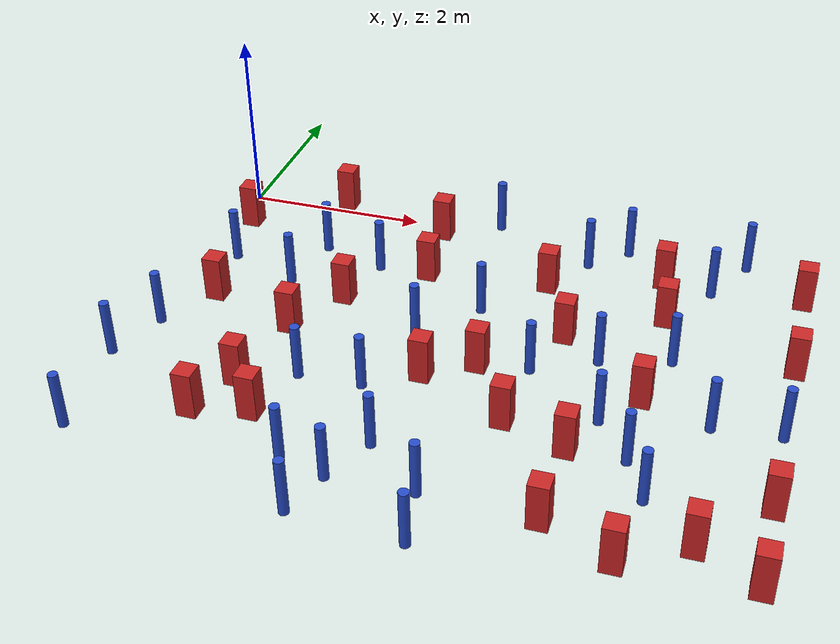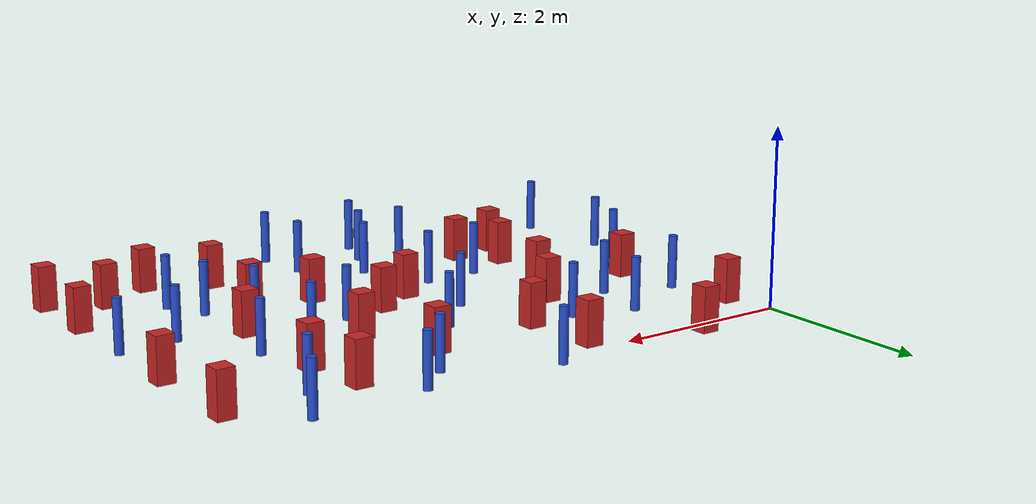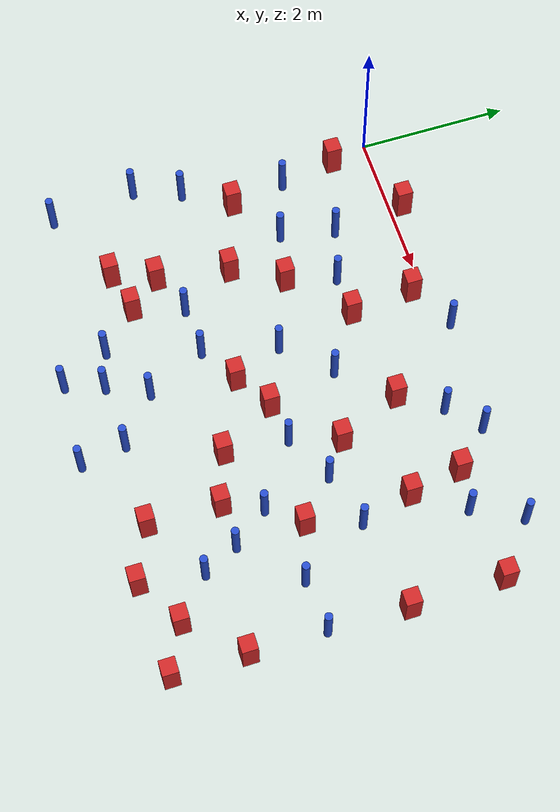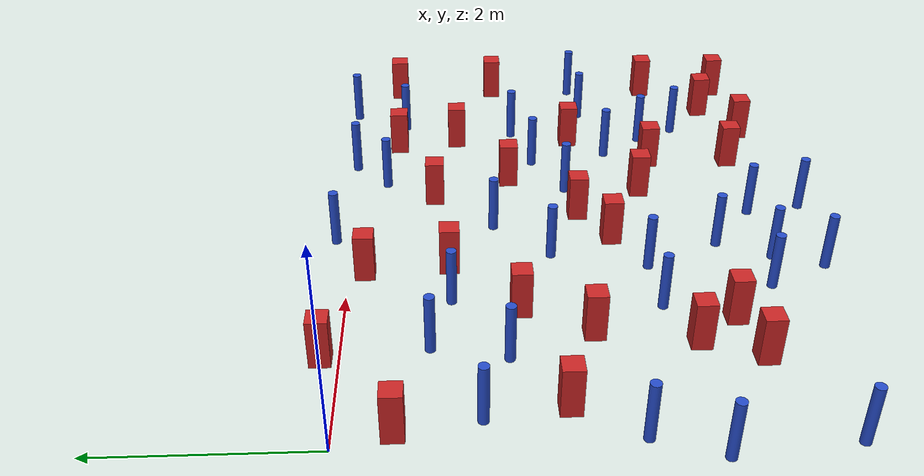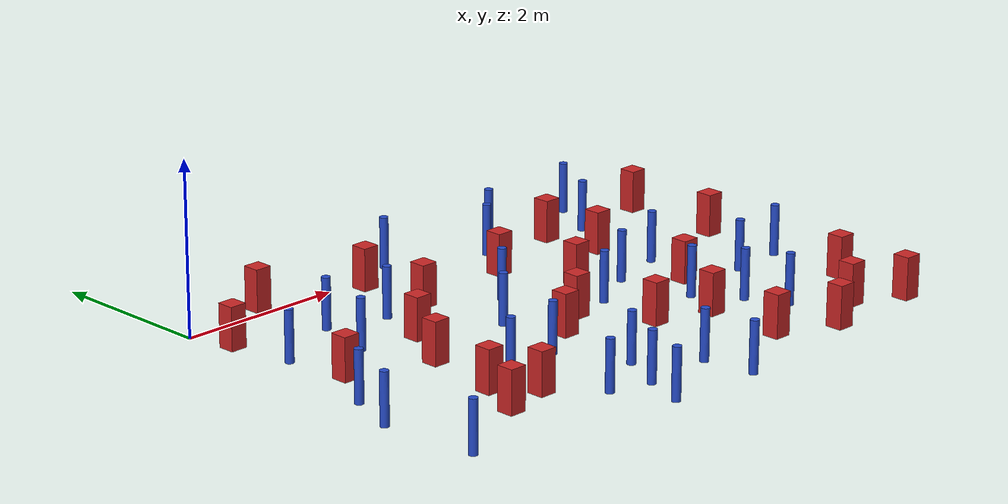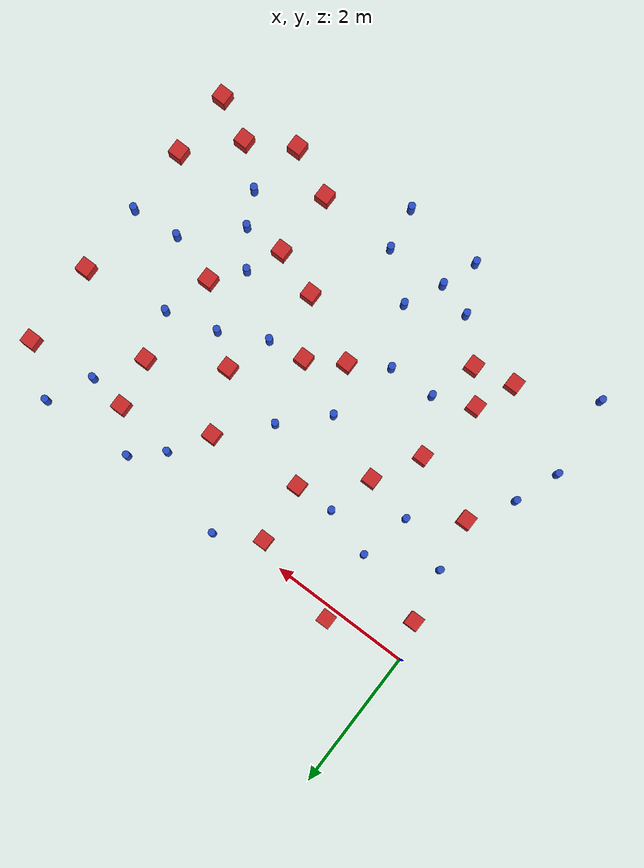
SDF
<sdf version="1.6">
 <model name="dense_32">
  <model name="pole_obstacle12">
   <static>true</static>
   <pose>2.97804801223 0.164714240803 2.88873142074e-08 -9.90536689314e-09 4.60219949002e-07 -1.20965994953e-07</pose>
   <link name="link">
    <pose>0 0 0.3 0 -0 0</pose>
    <inertial>
     <mass>1</mass>
     <inertia><ixx>0.145833</ixx><ixy>0</ixy><ixz>0</ixz><iyy>0.145833</iyy><iyz>0</iyz><izz>0.125</izz></inertia>
    </inertial>
    <collision name="collision">
     <geometry><cylinder><radius>0.05</radius><length>.6</length></cylinder></geometry>
    </collision>
    <visual name="visual">
     <geometry><cylinder><radius>0.05</radius><length>.6</length></cylinder></geometry>
     <material>
      <script><name>Gazebo/Blue</name><uri>file://media/materials/scripts/gazebo.material</uri></script>
     </material>
    </visual>
   </link>
  </model>
  <model name="pole_obstacle16">
   <static>true</static>
   <pose>4.10393876735 -0.329731906449 2.88873142074e-08 -9.90536689981e-09 4.60219948986e-07 -1.20965994962e-07</pose>
   <link name="link">
    <pose>0 0 0.3 0 -0 0</pose>
    <inertial>
     <mass>1</mass>
     <inertia><ixx>0.145833</ixx><ixy>0</ixy><ixz>0</ixz><iyy>0.145833</iyy><iyz>0</iyz><izz>0.125</izz></inertia>
    </inertial>
    <collision name="collision">
     <geometry><cylinder><radius>0.05</radius><length>.6</length></cylinder></geometry>
    </collision>
    <visual name="visual">
     <geometry><cylinder><radius>0.05</radius><length>.6</length></cylinder></geometry>
     <material>
      <script><name>Gazebo/Blue</name><uri>file://media/materials/scripts/gazebo.material</uri></script>
     </material>
    </visual>
   </link>
  </model>
  <model name="square_post_obstacle24">
   <static>true</static>
   <pose>0.161639222224 -0.51346482138 8.22691968438e-08 7.2212513382e-06 -7.54495500217e-07 2.29674213826e-05</pose>
   <link name="link">
    <pose>0 0 0.25 0 -0 0</pose>
    <inertial>
     <mass>100</mass>
     <inertia>
      <ixx>0.166667</ixx>
      <ixy>0</ixy>
      <ixz>0</ixz>
      <iyy>0.166667</iyy>
      <iyz>0</iyz>
      <izz>0.166667</izz>
     </inertia>
    </inertial>
    <collision name="collision"><geometry><box><size>.2 .2 .5</size></box></geometry></collision>
    <visual name="visual">
     <geometry><box><size>.2 .2 .5</size></box></geometry>
     <material>
      <script><name>Gazebo/Red</name><uri>file://media/materials/scripts/gazebo.material</uri></script>
     </material>
    </visual>
   </link>
  </model>
  <model name="pole_obstacle36">
   <static>true</static>
   <pose>3.38603469121 -4.26538103777 2.88873142074e-08 -9.90536689859e-09 4.60219948989e-07 -1.20965994961e-07</pose>
   <link name="link">
    <pose>0 0 0.3 0 -0 0</pose>
    <inertial>
     <mass>1</mass>
     <inertia><ixx>0.145833</ixx><ixy>0</ixy><ixz>0</ixz><iyy>0.145833</iyy><iyz>0</iyz><izz>0.125</izz></inertia>
    </inertial>
    <collision name="collision">
     <geometry><cylinder><radius>0.05</radius><length>.6</length></cylinder></geometry>
    </collision>
    <visual name="visual">
     <geometry><cylinder><radius>0.05</radius><length>.6</length></cylinder></geometry>
     <material>
      <script><name>Gazebo/Blue</name><uri>file://media/materials/scripts/gazebo.material</uri></script>
     </material>
    </visual>
   </link>
  </model>
  <model name="pole_obstacle39">
   <static>true</static>
   <pose>4.72475378605 -2.88024928245 2.88873142074e-08 -9.90536690245e-09 4.6021994898e-07 -1.20965994966e-07</pose>
   <link name="link">
    <pose>0 0 0.3 0 -0 0</pose>
    <inertial>
     <mass>1</mass>
     <inertia><ixx>0.145833</ixx><ixy>0</ixy><ixz>0</ixz><iyy>0.145833</iyy><iyz>0</iyz><izz>0.125</izz></inertia>
    </inertial>
    <collision name="collision">
     <geometry><cylinder><radius>0.05</radius><length>.6</length></cylinder></geometry>
    </collision>
    <visual name="visual">
     <geometry><cylinder><radius>0.05</radius><length>.6</length></cylinder></geometry>
     <material>
      <script><name>Gazebo/Blue</name><uri>file://media/materials/scripts/gazebo.material</uri></script>
     </material>
    </visual>
   </link>
  </model>
  <model name="square_post_obstacle40">
   <static>true</static>
   <pose>5.0779610593 -1.13117154271 8.22691968438e-08 7.2212513382e-06 -7.54495500217e-07 2.29674213826e-05</pose>
   <link name="link">
    <pose>0 0 0.25 0 -0 0</pose>
    <inertial>
     <mass>100</mass>
     <inertia>
      <ixx>0.166667</ixx>
      <ixy>0</ixy>
      <ixz>0</ixz>
      <iyy>0.166667</iyy>
      <iyz>0</iyz>
      <izz>0.166667</izz>
     </inertia>
    </inertial>
    <collision name="collision"><geometry><box><size>.2 .2 .5</size></box></geometry></collision>
    <visual name="visual">
     <geometry><box><size>.2 .2 .5</size></box></geometry>
     <material>
      <script><name>Gazebo/Red</name><uri>file://media/materials/scripts/gazebo.material</uri></script>
     </material>
    </visual>
   </link>
  </model>
  <model name="square_post_obstacle46">
   <static>true</static>
   <pose>1.10136585486 0.15937719004 8.22691968438e-08 7.2212513382e-06 -7.54495500217e-07 2.29674213826e-05</pose>
   <link name="link">
    <pose>0 0 0.25 0 -0 0</pose>
    <inertial>
     <mass>100</mass>
     <inertia>
      <ixx>0.166667</ixx>
      <ixy>0</ixy>
      <ixz>0</ixz>
      <iyy>0.166667</iyy>
      <iyz>0</iyz>
      <izz>0.166667</izz>
     </inertia>
    </inertial>
    <collision name="collision"><geometry><box><size>.2 .2 .5</size></box></geometry></collision>
    <visual name="visual">
     <geometry><box><size>.2 .2 .5</size></box></geometry>
     <material>
      <script><name>Gazebo/Red</name><uri>file://media/materials/scripts/gazebo.material</uri></script>
     </material>
    </visual>
   </link>
  </model>
  <model name="pole_obstacle46">
   <static>true</static>
   <pose>5.74136471731 -2.68708174946 2.88873142074e-08 -9.90536690245e-09 4.6021994898e-07 -1.20965994966e-07</pose>
   <link name="link">
    <pose>0 0 0.3 0 -0 0</pose>
    <inertial>
     <mass>1</mass>
     <inertia><ixx>0.145833</ixx><ixy>0</ixy><ixz>0</ixz><iyy>0.145833</iyy><iyz>0</iyz><izz>0.125</izz></inertia>
    </inertial>
    <collision name="collision">
     <geometry><cylinder><radius>0.05</radius><length>.6</length></cylinder></geometry>
    </collision>
    <visual name="visual">
     <geometry><cylinder><radius>0.05</radius><length>.6</length></cylinder></geometry>
     <material>
      <script><name>Gazebo/Blue</name><uri>file://media/materials/scripts/gazebo.material</uri></script>
     </material>
    </visual>
   </link>
  </model>
  <model name="square_post_obstacle53">
   <static>true</static>
   <pose>5.05509290788 -2.47497143561 8.22691968438e-08 7.2212513382e-06 -7.54495500217e-07 2.29674213826e-05</pose>
   <link name="link">
    <pose>0 0 0.25 0 -0 0</pose>
    <inertial>
     <mass>100</mass>
     <inertia>
      <ixx>0.166667</ixx>
      <ixy>0</ixy>
      <ixz>0</ixz>
      <iyy>0.166667</iyy>
      <iyz>0</iyz>
      <izz>0.166667</izz>
     </inertia>
    </inertial>
    <collision name="collision"><geometry><box><size>.2 .2 .5</size></box></geometry></collision>
    <visual name="visual">
     <geometry><box><size>.2 .2 .5</size></box></geometry>
     <material>
      <script><name>Gazebo/Red</name><uri>file://media/materials/scripts/gazebo.material</uri></script>
     </material>
    </visual>
   </link>
  </model>
  <model name="square_post_obstacle55">
   <static>true</static>
   <pose>1.22004076152 -3.26660531634 8.22691968438e-08 7.2212513382e-06 -7.54495500217e-07 2.29674213826e-05</pose>
   <link name="link">
    <pose>0 0 0.25 0 -0 0</pose>
    <inertial>
     <mass>100</mass>
     <inertia>
      <ixx>0.166667</ixx>
      <ixy>0</ixy>
      <ixz>0</ixz>
      <iyy>0.166667</iyy>
      <iyz>0</iyz>
      <izz>0.166667</izz>
     </inertia>
    </inertial>
    <collision name="collision"><geometry><box><size>.2 .2 .5</size></box></geometry></collision>
    <visual name="visual">
     <geometry><box><size>.2 .2 .5</size></box></geometry>
     <material>
      <script><name>Gazebo/Red</name><uri>file://media/materials/scripts/gazebo.material</uri></script>
     </material>
    </visual>
   </link>
  </model>
  <model name="pole_obstacle57">
   <static>true</static>
   <pose>3.19239928107 -1.48309557375 2.88873142074e-08 -9.90536689395e-09 4.60219949e-07 -1.20965994953e-07</pose>
   <link name="link">
    <pose>0 0 0.3 0 -0 0</pose>
    <inertial>
     <mass>1</mass>
     <inertia><ixx>0.145833</ixx><ixy>0</ixy><ixz>0</ixz><iyy>0.145833</iyy><iyz>0</iyz><izz>0.125</izz></inertia>
    </inertial>
    <collision name="collision">
     <geometry><cylinder><radius>0.05</radius><length>.6</length></cylinder></geometry>
    </collision>
    <visual name="visual">
     <geometry><cylinder><radius>0.05</radius><length>.6</length></cylinder></geometry>
     <material>
      <script><name>Gazebo/Blue</name><uri>file://media/materials/scripts/gazebo.material</uri></script>
     </material>
    </visual>
   </link>
  </model>
  <model name="square_post_obstacle64">
   <static>true</static>
   <pose>4.49527817915 -4.29552521567 8.22691968438e-08 7.22125133819e-06 -7.54495500217e-07 2.29674213826e-05</pose>
   <link name="link">
    <pose>0 0 0.25 0 -0 0</pose>
    <inertial>
     <mass>100</mass>
     <inertia>
      <ixx>0.166667</ixx>
      <ixy>0</ixy>
      <ixz>0</ixz>
      <iyy>0.166667</iyy>
      <iyz>0</iyz>
      <izz>0.166667</izz>
     </inertia>
    </inertial>
    <collision name="collision"><geometry><box><size>.2 .2 .5</size></box></geometry></collision>
    <visual name="visual">
     <geometry><box><size>.2 .2 .5</size></box></geometry>
     <material>
      <script><name>Gazebo/Red</name><uri>file://media/materials/scripts/gazebo.material</uri></script>
     </material>
    </visual>
   </link>
  </model>
  <model name="square_post_obstacle71">
   <static>true</static>
   <pose>2.92680643446 -2.6990966376 8.22691968438e-08 7.2212513382e-06 -7.54495500217e-07 2.29674213826e-05</pose>
   <link name="link">
    <pose>0 0 0.25 0 -0 0</pose>
    <inertial>
     <mass>100</mass>
     <inertia>
      <ixx>0.166667</ixx>
      <ixy>0</ixy>
      <ixz>0</ixz>
      <iyy>0.166667</iyy>
      <iyz>0</iyz>
      <izz>0.166667</izz>
     </inertia>
    </inertial>
    <collision name="collision"><geometry><box><size>.2 .2 .5</size></box></geometry></collision>
    <visual name="visual">
     <geometry><box><size>.2 .2 .5</size></box></geometry>
     <material>
      <script><name>Gazebo/Red</name><uri>file://media/materials/scripts/gazebo.material</uri></script>
     </material>
    </visual>
   </link>
  </model>
  <model name="pole_obstacle69">
   <static>true</static>
   <pose>2.79278912963 -3.78151208658 2.88873142074e-08 -9.90536690232e-09 4.6021994898e-07 -1.20965994968e-07</pose>
   <link name="link">
    <pose>0 0 0.3 0 -0 0</pose>
    <inertial>
     <mass>1</mass>
     <inertia><ixx>0.145833</ixx><ixy>0</ixy><ixz>0</ixz><iyy>0.145833</iyy><iyz>0</iyz><izz>0.125</izz></inertia>
    </inertial>
    <collision name="collision">
     <geometry><cylinder><radius>0.05</radius><length>.6</length></cylinder></geometry>
    </collision>
    <visual name="visual">
     <geometry><cylinder><radius>0.05</radius><length>.6</length></cylinder></geometry>
     <material>
      <script><name>Gazebo/Blue</name><uri>file://media/materials/scripts/gazebo.material</uri></script>
     </material>
    </visual>
   </link>
  </model>
  <model name="pole_obstacle74">
   <static>true</static>
   <pose>5.07601663097 -3.34591447213 2.88873142074e-08 -9.90536690245e-09 4.6021994898e-07 -1.20965994966e-07</pose>
   <link name="link">
    <pose>0 0 0.3 0 -0 0</pose>
    <inertial>
     <mass>1</mass>
     <inertia><ixx>0.145833</ixx><ixy>0</ixy><ixz>0</ixz><iyy>0.145833</iyy><iyz>0</iyz><izz>0.125</izz></inertia>
    </inertial>
    <collision name="collision">
     <geometry><cylinder><radius>0.05</radius><length>.6</length></cylinder></geometry>
    </collision>
    <visual name="visual">
     <geometry><cylinder><radius>0.05</radius><length>.6</length></cylinder></geometry>
     <material>
      <script><name>Gazebo/Blue</name><uri>file://media/materials/scripts/gazebo.material</uri></script>
     </material>
    </visual>
   </link>
  </model>
  <model name="pole_obstacle76">
   <static>true</static>
   <pose>2.05531231607 -4.1677119398 2.88873142074e-08 -9.90536689859e-09 4.60219948989e-07 -1.20965994961e-07</pose>
   <link name="link">
    <pose>0 0 0.3 0 -0 0</pose>
    <inertial>
     <mass>1</mass>
     <inertia><ixx>0.145833</ixx><ixy>0</ixy><ixz>0</ixz><iyy>0.145833</iyy><iyz>0</iyz><izz>0.125</izz></inertia>
    </inertial>
    <collision name="collision">
     <geometry><cylinder><radius>0.05</radius><length>.6</length></cylinder></geometry>
    </collision>
    <visual name="visual">
     <geometry><cylinder><radius>0.05</radius><length>.6</length></cylinder></geometry>
     <material>
      <script><name>Gazebo/Blue</name><uri>file://media/materials/scripts/gazebo.material</uri></script>
     </material>
    </visual>
   </link>
  </model>
  <model name="square_post_obstacle82">
   <static>true</static>
   <pose>4.51453344151 -3.36527250385 8.22691968438e-08 7.2212513382e-06 -7.54495500217e-07 2.29674213826e-05</pose>
   <link name="link">
    <pose>0 0 0.25 0 -0 0</pose>
    <inertial>
     <mass>100</mass>
     <inertia>
      <ixx>0.166667</ixx>
      <ixy>0</ixy>
      <ixz>0</ixz>
      <iyy>0.166667</iyy>
      <iyz>0</iyz>
      <izz>0.166667</izz>
     </inertia>
    </inertial>
    <collision name="collision"><geometry><box><size>.2 .2 .5</size></box></geometry></collision>
    <visual name="visual">
     <geometry><box><size>.2 .2 .5</size></box></geometry>
     <material>
      <script><name>Gazebo/Red</name><uri>file://media/materials/scripts/gazebo.material</uri></script>
     </material>
    </visual>
   </link>
  </model>
  <model name="pole_obstacle98">
   <static>true</static>
   <pose>-0.054227129962 -4.32937963711 2.88873142074e-08 -9.90536689643e-09 4.60219948994e-07 -1.20965994959e-07</pose>
   <link name="link">
    <pose>0 0 0.3 0 -0 0</pose>
    <inertial>
     <mass>1</mass>
     <inertia><ixx>0.145833</ixx><ixy>0</ixy><ixz>0</ixz><iyy>0.145833</iyy><iyz>0</iyz><izz>0.125</izz></inertia>
    </inertial>
    <collision name="collision">
     <geometry><cylinder><radius>0.05</radius><length>.6</length></cylinder></geometry>
    </collision>
    <visual name="visual">
     <geometry><cylinder><radius>0.05</radius><length>.6</length></cylinder></geometry>
     <material>
      <script><name>Gazebo/Blue</name><uri>file://media/materials/scripts/gazebo.material</uri></script>
     </material>
    </visual>
   </link>
  </model>
  <model name="pole_obstacle99">
   <static>true</static>
   <pose>1.91052375911 -1.01987941897 2.88873142074e-08 -9.90536689704e-09 4.60219948992e-07 -1.20965994957e-07</pose>
   <link name="link">
    <pose>0 0 0.3 0 -0 0</pose>
    <inertial>
     <mass>1</mass>
     <inertia><ixx>0.145833</ixx><ixy>0</ixy><ixz>0</ixz><iyy>0.145833</iyy><iyz>0</iyz><izz>0.125</izz></inertia>
    </inertial>
    <collision name="collision">
     <geometry><cylinder><radius>0.05</radius><length>.6</length></cylinder></geometry>
    </collision>
    <visual name="visual">
     <geometry><cylinder><radius>0.05</radius><length>.6</length></cylinder></geometry>
     <material>
      <script><name>Gazebo/Blue</name><uri>file://media/materials/scripts/gazebo.material</uri></script>
     </material>
    </visual>
   </link>
  </model>
  <model name="pole_obstacle101">
   <static>true</static>
   <pose>3.48540397908 -4.85379402383 2.88873142074e-08 -9.90536689859e-09 4.60219948989e-07 -1.20965994961e-07</pose>
   <link name="link">
    <pose>0 0 0.3 0 -0 0</pose>
    <inertial>
     <mass>1</mass>
     <inertia><ixx>0.145833</ixx><ixy>0</ixy><ixz>0</ixz><iyy>0.145833</iyy><iyz>0</iyz><izz>0.125</izz></inertia>
    </inertial>
    <collision name="collision">
     <geometry><cylinder><radius>0.05</radius><length>.6</length></cylinder></geometry>
    </collision>
    <visual name="visual">
     <geometry><cylinder><radius>0.05</radius><length>.6</length></cylinder></geometry>
     <material>
      <script><name>Gazebo/Blue</name><uri>file://media/materials/scripts/gazebo.material</uri></script>
     </material>
    </visual>
   </link>
  </model>
  <model name="square_post_obstacle89">
   <static>true</static>
   <pose>5.18198364785 -4.59470534881 8.22691968438e-08 7.22125133819e-06 -7.54495500217e-07 2.29674213826e-05</pose>
   <link name="link">
    <pose>0 0 0.25 0 -0 0</pose>
    <inertial>
     <mass>100</mass>
     <inertia>
      <ixx>0.166667</ixx>
      <ixy>0</ixy>
      <ixz>0</ixz>
      <iyy>0.166667</iyy>
      <iyz>0</iyz>
      <izz>0.166667</izz>
     </inertia>
    </inertial>
    <collision name="collision"><geometry><box><size>.2 .2 .5</size></box></geometry></collision>
    <visual name="visual">
     <geometry><box><size>.2 .2 .5</size></box></geometry>
     <material>
      <script><name>Gazebo/Red</name><uri>file://media/materials/scripts/gazebo.material</uri></script>
     </material>
    </visual>
   </link>
  </model>
  <model name="square_post_obstacle95">
   <static>true</static>
   <pose>3.86135219473 -3.14104356581 8.22691968438e-08 7.2212513382e-06 -7.54495500217e-07 2.29674213826e-05</pose>
   <link name="link">
    <pose>0 0 0.25 0 -0 0</pose>
    <inertial>
     <mass>100</mass>
     <inertia>
      <ixx>0.166667</ixx>
      <ixy>0</ixy>
      <ixz>0</ixz>
      <iyy>0.166667</iyy>
      <iyz>0</iyz>
      <izz>0.166667</izz>
     </inertia>
    </inertial>
    <collision name="collision"><geometry><box><size>.2 .2 .5</size></box></geometry></collision>
    <visual name="visual">
     <geometry><box><size>.2 .2 .5</size></box></geometry>
     <material>
      <script><name>Gazebo/Red</name><uri>file://media/materials/scripts/gazebo.material</uri></script>
     </material>
    </visual>
   </link>
  </model>
  <model name="pole_obstacle116">
   <static>true</static>
   <pose>5.47581330239 -0.514907667353 2.88873142074e-08 -9.90536689968e-09 4.60219948986e-07 -1.20965994963e-07</pose>
   <link name="link">
    <pose>0 0 0.3 0 -0 0</pose>
    <inertial>
     <mass>1</mass>
     <inertia><ixx>0.145833</ixx><ixy>0</ixy><ixz>0</ixz><iyy>0.145833</iyy><iyz>0</iyz><izz>0.125</izz></inertia>
    </inertial>
    <collision name="collision">
     <geometry><cylinder><radius>0.05</radius><length>.6</length></cylinder></geometry>
    </collision>
    <visual name="visual">
     <geometry><cylinder><radius>0.05</radius><length>.6</length></cylinder></geometry>
     <material>
      <script><name>Gazebo/Blue</name><uri>file://media/materials/scripts/gazebo.material</uri></script>
     </material>
    </visual>
   </link>
  </model>
  <model name="pole_obstacle119">
   <static>true</static>
   <pose>6.40695636859 -2.62847848834 2.88873142074e-08 -9.90536690245e-09 4.6021994898e-07 -1.20965994966e-07</pose>
   <link name="link">
    <pose>0 0 0.3 0 -0 0</pose>
    <inertial>
     <mass>1</mass>
     <inertia><ixx>0.145833</ixx><ixy>0</ixy><ixz>0</ixz><iyy>0.145833</iyy><iyz>0</iyz><izz>0.125</izz></inertia>
    </inertial>
    <collision name="collision">
     <geometry><cylinder><radius>0.05</radius><length>.6</length></cylinder></geometry>
    </collision>
    <visual name="visual">
     <geometry><cylinder><radius>0.05</radius><length>.6</length></cylinder></geometry>
     <material>
      <script><name>Gazebo/Blue</name><uri>file://media/materials/scripts/gazebo.material</uri></script>
     </material>
    </visual>
   </link>
  </model>
  <model name="square_post_obstacle114">
   <static>true</static>
   <pose>6.38278532334 -4.53288457814 8.22691968438e-08 7.22125133819e-06 -7.54495500217e-07 2.29674213826e-05</pose>
   <link name="link">
    <pose>0 0 0.25 0 -0 0</pose>
    <inertial>
     <mass>100</mass>
     <inertia>
      <ixx>0.166667</ixx>
      <ixy>0</ixy>
      <ixz>0</ixz>
      <iyy>0.166667</iyy>
      <iyz>0</iyz>
      <izz>0.166667</izz>
     </inertia>
    </inertial>
    <collision name="collision"><geometry><box><size>.2 .2 .5</size></box></geometry></collision>
    <visual name="visual">
     <geometry><box><size>.2 .2 .5</size></box></geometry>
     <material>
      <script><name>Gazebo/Red</name><uri>file://media/materials/scripts/gazebo.material</uri></script>
     </material>
    </visual>
   </link>
  </model>
  <model name="square_post_obstacle116">
   <static>true</static>
   <pose>3.41114379709 -2.40123617568 8.22691968438e-08 7.2212513382e-06 -7.54495500217e-07 2.29674213826e-05</pose>
   <link name="link">
    <pose>0 0 0.25 0 -0 0</pose>
    <inertial>
     <mass>100</mass>
     <inertia>
      <ixx>0.166667</ixx>
      <ixy>0</ixy>
      <ixz>0</ixz>
      <iyy>0.166667</iyy>
      <iyz>0</iyz>
      <izz>0.166667</izz>
     </inertia>
    </inertial>
    <collision name="collision"><geometry><box><size>.2 .2 .5</size></box></geometry></collision>
    <visual name="visual">
     <geometry><box><size>.2 .2 .5</size></box></geometry>
     <material>
      <script><name>Gazebo/Red</name><uri>file://media/materials/scripts/gazebo.material</uri></script>
     </material>
    </visual>
   </link>
  </model>
  <model name="pole_obstacle136">
   <static>true</static>
   <pose>5.25550344633 -1.80153057896 2.88873142074e-08 -9.90536689445e-09 4.60219948999e-07 -1.20965994956e-07</pose>
   <link name="link">
    <pose>0 0 0.3 0 -0 0</pose>
    <inertial>
     <mass>1</mass>
     <inertia><ixx>0.145833</ixx><ixy>0</ixy><ixz>0</ixz><iyy>0.145833</iyy><iyz>0</iyz><izz>0.125</izz></inertia>
    </inertial>
    <collision name="collision">
     <geometry><cylinder><radius>0.05</radius><length>.6</length></cylinder></geometry>
    </collision>
    <visual name="visual">
     <geometry><cylinder><radius>0.05</radius><length>.6</length></cylinder></geometry>
     <material>
      <script><name>Gazebo/Blue</name><uri>file://media/materials/scripts/gazebo.material</uri></script>
     </material>
    </visual>
   </link>
  </model>
  <model name="square_post_obstacle118">
   <static>true</static>
   <pose>1.37948998349 -2.3213723522 8.22691968438e-08 7.2212513382e-06 -7.54495500217e-07 2.29674213826e-05</pose>
   <link name="link">
    <pose>0 0 0.25 0 -0 0</pose>
    <inertial>
     <mass>100</mass>
     <inertia>
      <ixx>0.166667</ixx>
      <ixy>0</ixy>
      <ixz>0</ixz>
      <iyy>0.166667</iyy>
      <iyz>0</iyz>
      <izz>0.166667</izz>
     </inertia>
    </inertial>
    <collision name="collision"><geometry><box><size>.2 .2 .5</size></box></geometry></collision>
    <visual name="visual">
     <geometry><box><size>.2 .2 .5</size></box></geometry>
     <material>
      <script><name>Gazebo/Red</name><uri>file://media/materials/scripts/gazebo.material</uri></script>
     </material>
    </visual>
   </link>
  </model>
  <model name="pole_obstacle137">
   <static>true</static>
   <pose>1.06150170359 -1.52655038164 2.88873142074e-08 -9.90536689672e-09 4.60219948993e-07 -1.20965994959e-07</pose>
   <link name="link">
    <pose>0 0 0.3 0 -0 0</pose>
    <inertial>
     <mass>1</mass>
     <inertia><ixx>0.145833</ixx><ixy>0</ixy><ixz>0</ixz><iyy>0.145833</iyy><iyz>0</iyz><izz>0.125</izz></inertia>
    </inertial>
    <collision name="collision">
     <geometry><cylinder><radius>0.05</radius><length>.6</length></cylinder></geometry>
    </collision>
    <visual name="visual">
     <geometry><cylinder><radius>0.05</radius><length>.6</length></cylinder></geometry>
     <material>
      <script><name>Gazebo/Blue</name><uri>file://media/materials/scripts/gazebo.material</uri></script>
     </material>
    </visual>
   </link>
  </model>
  <model name="square_post_obstacle122">
   <static>true</static>
   <pose>4.95694424288 -0.447218196587 8.22691968438e-08 7.2212513382e-06 -7.54495500217e-07 2.29674213826e-05</pose>
   <link name="link">
    <pose>0 0 0.25 0 -0 0</pose>
    <inertial>
     <mass>100</mass>
     <inertia>
      <ixx>0.166667</ixx>
      <ixy>0</ixy>
      <ixz>0</ixz>
      <iyy>0.166667</iyy>
      <iyz>0</iyz>
      <izz>0.166667</izz>
     </inertia>
    </inertial>
    <collision name="collision"><geometry><box><size>.2 .2 .5</size></box></geometry></collision>
    <visual name="visual">
     <geometry><box><size>.2 .2 .5</size></box></geometry>
     <material>
      <script><name>Gazebo/Red</name><uri>file://media/materials/scripts/gazebo.material</uri></script>
     </material>
    </visual>
   </link>
  </model>
  <model name="pole_obstacle139">
   <static>true</static>
   <pose>0.0464194372043 -2.59140048178 2.88873142074e-08 -9.9053669241e-09 4.60219948928e-07 -1.20965994988e-07</pose>
   <link name="link">
    <pose>0 0 0.3 0 -0 0</pose>
    <inertial>
     <mass>1</mass>
     <inertia><ixx>0.145833</ixx><ixy>0</ixy><ixz>0</ixz><iyy>0.145833</iyy><iyz>0</iyz><izz>0.125</izz></inertia>
    </inertial>
    <collision name="collision">
     <geometry><cylinder><radius>0.05</radius><length>.6</length></cylinder></geometry>
    </collision>
    <visual name="visual">
     <geometry><cylinder><radius>0.05</radius><length>.6</length></cylinder></geometry>
     <material>
      <script><name>Gazebo/Blue</name><uri>file://media/materials/scripts/gazebo.material</uri></script>
     </material>
    </visual>
   </link>
  </model>
  <model name="pole_obstacle140">
   <static>true</static>
   <pose>5.29842400481 -3.79594024571 2.88873142074e-08 -9.90536690245e-09 4.6021994898e-07 -1.20965994966e-07</pose>
   <link name="link">
    <pose>0 0 0.3 0 -0 0</pose>
    <inertial>
     <mass>1</mass>
     <inertia><ixx>0.145833</ixx><ixy>0</ixy><ixz>0</ixz><iyy>0.145833</iyy><iyz>0</iyz><izz>0.125</izz></inertia>
    </inertial>
    <collision name="collision">
     <geometry><cylinder><radius>0.05</radius><length>.6</length></cylinder></geometry>
    </collision>
    <visual name="visual">
     <geometry><cylinder><radius>0.05</radius><length>.6</length></cylinder></geometry>
     <material>
      <script><name>Gazebo/Blue</name><uri>file://media/materials/scripts/gazebo.material</uri></script>
     </material>
    </visual>
   </link>
  </model>
  <model name="pole_obstacle141">
   <static>true</static>
   <pose>2.64979027185 -2.04448744297 2.88873142074e-08 -9.9053668955e-09 4.60219948996e-07 -1.20965994957e-07</pose>
   <link name="link">
    <pose>0 0 0.3 0 -0 0</pose>
    <inertial>
     <mass>1</mass>
     <inertia><ixx>0.145833</ixx><ixy>0</ixy><ixz>0</ixz><iyy>0.145833</iyy><iyz>0</iyz><izz>0.125</izz></inertia>
    </inertial>
    <collision name="collision">
     <geometry><cylinder><radius>0.05</radius><length>.6</length></cylinder></geometry>
    </collision>
    <visual name="visual">
     <geometry><cylinder><radius>0.05</radius><length>.6</length></cylinder></geometry>
     <material>
      <script><name>Gazebo/Blue</name><uri>file://media/materials/scripts/gazebo.material</uri></script>
     </material>
    </visual>
   </link>
  </model>
  <model name="square_post_obstacle129">
   <static>true</static>
   <pose>4.13688390705 -1.69791043457 8.22691968438e-08 7.2212513382e-06 -7.54495500217e-07 2.29674213826e-05</pose>
   <link name="link">
    <pose>0 0 0.25 0 -0 0</pose>
    <inertial>
     <mass>100</mass>
     <inertia>
      <ixx>0.166667</ixx>
      <ixy>0</ixy>
      <ixz>0</ixz>
      <iyy>0.166667</iyy>
      <iyz>0</iyz>
      <izz>0.166667</izz>
     </inertia>
    </inertial>
    <collision name="collision"><geometry><box><size>.2 .2 .5</size></box></geometry></collision>
    <visual name="visual">
     <geometry><box><size>.2 .2 .5</size></box></geometry>
     <material>
      <script><name>Gazebo/Red</name><uri>file://media/materials/scripts/gazebo.material</uri></script>
     </material>
    </visual>
   </link>
  </model>
  <model name="pole_obstacle145">
   <static>true</static>
   <pose>2.36760184558 -4.79237131937 2.88873142074e-08 -9.90536689859e-09 4.60219948989e-07 -1.20965994961e-07</pose>
   <link name="link">
    <pose>0 0 0.3 0 -0 0</pose>
    <inertial>
     <mass>1</mass>
     <inertia><ixx>0.145833</ixx><ixy>0</ixy><ixz>0</ixz><iyy>0.145833</iyy><iyz>0</iyz><izz>0.125</izz></inertia>
    </inertial>
    <collision name="collision">
     <geometry><cylinder><radius>0.05</radius><length>.6</length></cylinder></geometry>
    </collision>
    <visual name="visual">
     <geometry><cylinder><radius>0.05</radius><length>.6</length></cylinder></geometry>
     <material>
      <script><name>Gazebo/Blue</name><uri>file://media/materials/scripts/gazebo.material</uri></script>
     </material>
    </visual>
   </link>
  </model>
  <model name="pole_obstacle148">
   <static>true</static>
   <pose>4.54901932242 -2.00124480596 2.88873142074e-08 -9.90536689749e-09 4.60219948991e-07 -1.20965994959e-07</pose>
   <link name="link">
    <pose>0 0 0.3 0 -0 0</pose>
    <inertial>
     <mass>1</mass>
     <inertia><ixx>0.145833</ixx><ixy>0</ixy><ixz>0</ixz><iyy>0.145833</iyy><iyz>0</iyz><izz>0.125</izz></inertia>
    </inertial>
    <collision name="collision">
     <geometry><cylinder><radius>0.05</radius><length>.6</length></cylinder></geometry>
    </collision>
    <visual name="visual">
     <geometry><cylinder><radius>0.05</radius><length>.6</length></cylinder></geometry>
     <material>
      <script><name>Gazebo/Blue</name><uri>file://media/materials/scripts/gazebo.material</uri></script>
     </material>
    </visual>
   </link>
  </model>
  <model name="square_post_obstacle149">
   <static>true</static>
   <pose>0.992726091101 -3.81285954472 8.22691968438e-08 7.2212513382e-06 -7.54495500217e-07 2.29674213826e-05</pose>
   <link name="link">
    <pose>0 0 0.25 0 -0 0</pose>
    <inertial>
     <mass>100</mass>
     <inertia>
      <ixx>0.166667</ixx>
      <ixy>0</ixy>
      <ixz>0</ixz>
      <iyy>0.166667</iyy>
      <iyz>0</iyz>
      <izz>0.166667</izz>
     </inertia>
    </inertial>
    <collision name="collision"><geometry><box><size>.2 .2 .5</size></box></geometry></collision>
    <visual name="visual">
     <geometry><box><size>.2 .2 .5</size></box></geometry>
     <material>
      <script><name>Gazebo/Red</name><uri>file://media/materials/scripts/gazebo.material</uri></script>
     </material>
    </visual>
   </link>
  </model>
  <model name="pole_obstacle159">
   <static>true</static>
   <pose>1.21580393761 -0.815878536386 2.88873142074e-08 -9.90536689692e-09 4.60219948993e-07 -1.20965994958e-07</pose>
   <link name="link">
    <pose>0 0 0.3 0 -0 0</pose>
    <inertial>
     <mass>1</mass>
     <inertia><ixx>0.145833</ixx><ixy>0</ixy><ixz>0</ixz><iyy>0.145833</iyy><iyz>0</iyz><izz>0.125</izz></inertia>
    </inertial>
    <collision name="collision">
     <geometry><cylinder><radius>0.05</radius><length>.6</length></cylinder></geometry>
    </collision>
    <visual name="visual">
     <geometry><cylinder><radius>0.05</radius><length>.6</length></cylinder></geometry>
     <material>
      <script><name>Gazebo/Blue</name><uri>file://media/materials/scripts/gazebo.material</uri></script>
     </material>
    </visual>
   </link>
  </model>
  <model name="square_post_obstacle160">
   <static>true</static>
   <pose>5.80100388611 -4.24146071701 8.22691968438e-08 7.22125133819e-06 -7.54495500217e-07 2.29674213826e-05</pose>
   <link name="link">
    <pose>0 0 0.25 0 -0 0</pose>
    <inertial>
     <mass>100</mass>
     <inertia>
      <ixx>0.166667</ixx>
      <ixy>0</ixy>
      <ixz>0</ixz>
      <iyy>0.166667</iyy>
      <iyz>0</iyz>
      <izz>0.166667</izz>
     </inertia>
    </inertial>
    <collision name="collision"><geometry><box><size>.2 .2 .5</size></box></geometry></collision>
    <visual name="visual">
     <geometry><box><size>.2 .2 .5</size></box></geometry>
     <material>
      <script><name>Gazebo/Red</name><uri>file://media/materials/scripts/gazebo.material</uri></script>
     </material>
    </visual>
   </link>
  </model>
  <model name="square_post_obstacle167">
   <static>true</static>
   <pose>2.38143773502 -0.168196480774 8.22691968438e-08 7.2212513382e-06 -7.54495500217e-07 2.29674213826e-05</pose>
   <link name="link">
    <pose>0 0 0.25 0 -0 0</pose>
    <inertial>
     <mass>100</mass>
     <inertia>
      <ixx>0.166667</ixx>
      <ixy>0</ixy>
      <ixz>0</ixz>
      <iyy>0.166667</iyy>
      <iyz>0</iyz>
      <izz>0.166667</izz>
     </inertia>
    </inertial>
    <collision name="collision"><geometry><box><size>.2 .2 .5</size></box></geometry></collision>
    <visual name="visual">
     <geometry><box><size>.2 .2 .5</size></box></geometry>
     <material>
      <script><name>Gazebo/Red</name><uri>file://media/materials/scripts/gazebo.material</uri></script>
     </material>
    </visual>
   </link>
  </model>
  <model name="square_post_obstacle169">
   <static>true</static>
   <pose>6.43095597595 -0.418834882778 8.22691968438e-08 7.2212513382e-06 -7.54495500217e-07 2.29674213826e-05</pose>
   <link name="link">
    <pose>0 0 0.25 0 -0 0</pose>
    <inertial>
     <mass>100</mass>
     <inertia>
      <ixx>0.166667</ixx>
      <ixy>0</ixy>
      <ixz>0</ixz>
      <iyy>0.166667</iyy>
      <iyz>0</iyz>
      <izz>0.166667</izz>
     </inertia>
    </inertial>
    <collision name="collision"><geometry><box><size>.2 .2 .5</size></box></geometry></collision>
    <visual name="visual">
     <geometry><box><size>.2 .2 .5</size></box></geometry>
     <material>
      <script><name>Gazebo/Red</name><uri>file://media/materials/scripts/gazebo.material</uri></script>
     </material>
    </visual>
   </link>
  </model>
  <model name="pole_obstacle179">
   <static>true</static>
   <pose>3.92574005497 -2.32252557581 2.88873142074e-08 -9.90536690232e-09 4.6021994898e-07 -1.20965994968e-07</pose>
   <link name="link">
    <pose>0 0 0.3 0 -0 0</pose>
    <inertial>
     <mass>1</mass>
     <inertia><ixx>0.145833</ixx><ixy>0</ixy><ixz>0</ixz><iyy>0.145833</iyy><iyz>0</iyz><izz>0.125</izz></inertia>
    </inertial>
    <collision name="collision">
     <geometry><cylinder><radius>0.05</radius><length>.6</length></cylinder></geometry>
    </collision>
    <visual name="visual">
     <geometry><cylinder><radius>0.05</radius><length>.6</length></cylinder></geometry>
     <material>
      <script><name>Gazebo/Blue</name><uri>file://media/materials/scripts/gazebo.material</uri></script>
     </material>
    </visual>
   </link>
  </model>
  <model name="pole_obstacle181">
   <static>true</static>
   <pose>1.7671275776 -3.03332840048 2.88873142074e-08 -9.90536689791e-09 4.6021994899e-07 -1.20965994959e-07</pose>
   <link name="link">
    <pose>0 0 0.3 0 -0 0</pose>
    <inertial>
     <mass>1</mass>
     <inertia><ixx>0.145833</ixx><ixy>0</ixy><ixz>0</ixz><iyy>0.145833</iyy><iyz>0</iyz><izz>0.125</izz></inertia>
    </inertial>
    <collision name="collision">
     <geometry><cylinder><radius>0.05</radius><length>.6</length></cylinder></geometry>
    </collision>
    <visual name="visual">
     <geometry><cylinder><radius>0.05</radius><length>.6</length></cylinder></geometry>
     <material>
      <script><name>Gazebo/Blue</name><uri>file://media/materials/scripts/gazebo.material</uri></script>
     </material>
    </visual>
   </link>
  </model>
  <model name="square_post_obstacle172">
   <static>true</static>
   <pose>2.46437480745 -1.00769441329 8.22691968438e-08 7.2212513382e-06 -7.54495500217e-07 2.29674213826e-05</pose>
   <link name="link">
    <pose>0 0 0.25 0 -0 0</pose>
    <inertial>
     <mass>100</mass>
     <inertia>
      <ixx>0.166667</ixx>
      <ixy>0</ixy>
      <ixz>0</ixz>
      <iyy>0.166667</iyy>
      <iyz>0</iyz>
      <izz>0.166667</izz>
     </inertia>
    </inertial>
    <collision name="collision"><geometry><box><size>.2 .2 .5</size></box></geometry></collision>
    <visual name="visual">
     <geometry><box><size>.2 .2 .5</size></box></geometry>
     <material>
      <script><name>Gazebo/Red</name><uri>file://media/materials/scripts/gazebo.material</uri></script>
     </material>
    </visual>
   </link>
  </model>
  <model name="pole_obstacle185">
   <static>true</static>
   <pose>5.79050155967 0.0944160841133 2.88873142074e-08 -9.90536689727e-09 4.60219948992e-07 -1.20965994958e-07</pose>
   <link name="link">
    <pose>0 0 0.3 0 -0 0</pose>
    <inertial>
     <mass>1</mass>
     <inertia><ixx>0.145833</ixx><ixy>0</ixy><ixz>0</ixz><iyy>0.145833</iyy><iyz>0</iyz><izz>0.125</izz></inertia>
    </inertial>
    <collision name="collision">
     <geometry><cylinder><radius>0.05</radius><length>.6</length></cylinder></geometry>
    </collision>
    <visual name="visual">
     <geometry><cylinder><radius>0.05</radius><length>.6</length></cylinder></geometry>
     <material>
      <script><name>Gazebo/Blue</name><uri>file://media/materials/scripts/gazebo.material</uri></script>
     </material>
    </visual>
   </link>
  </model>
  <model name="square_post_obstacle173">
   <static>true</static>
   <pose>6.39635838201 -3.59390497213 8.22691968438e-08 7.2212513382e-06 -7.54495500217e-07 2.29674213826e-05</pose>
   <link name="link">
    <pose>0 0 0.25 0 -0 0</pose>
    <inertial>
     <mass>100</mass>
     <inertia>
      <ixx>0.166667</ixx>
      <ixy>0</ixy>
      <ixz>0</ixz>
      <iyy>0.166667</iyy>
      <iyz>0</iyz>
      <izz>0.166667</izz>
     </inertia>
    </inertial>
    <collision name="collision"><geometry><box><size>.2 .2 .5</size></box></geometry></collision>
    <visual name="visual">
     <geometry><box><size>.2 .2 .5</size></box></geometry>
     <material>
      <script><name>Gazebo/Red</name><uri>file://media/materials/scripts/gazebo.material</uri></script>
     </material>
    </visual>
   </link>
  </model>
  <model name="square_post_obstacle180">
   <static>true</static>
   <pose>1.56101290102 -3.68146595463 8.22691968438e-08 7.2212513382e-06 -7.54495500217e-07 2.29674213826e-05</pose>
   <link name="link">
    <pose>0 0 0.25 0 -0 0</pose>
    <inertial>
     <mass>100</mass>
     <inertia>
      <ixx>0.166667</ixx>
      <ixy>0</ixy>
      <ixz>0</ixz>
      <iyy>0.166667</iyy>
      <iyz>0</iyz>
      <izz>0.166667</izz>
     </inertia>
    </inertial>
    <collision name="collision"><geometry><box><size>.2 .2 .5</size></box></geometry></collision>
    <visual name="visual">
     <geometry><box><size>.2 .2 .5</size></box></geometry>
     <material>
      <script><name>Gazebo/Red</name><uri>file://media/materials/scripts/gazebo.material</uri></script>
     </material>
    </visual>
   </link>
  </model>
  <model name="square_post_obstacle182">
   <static>true</static>
   <pose>0.413481077123 -1.99149298667 8.22691968438e-08 7.2212513382e-06 -7.54495500217e-07 2.29674213826e-05</pose>
   <link name="link">
    <pose>0 0 0.25 0 -0 0</pose>
    <inertial>
     <mass>100</mass>
     <inertia>
      <ixx>0.166667</ixx>
      <ixy>0</ixy>
      <ixz>0</ixz>
      <iyy>0.166667</iyy>
      <iyz>0</iyz>
      <izz>0.166667</izz>
     </inertia>
    </inertial>
    <collision name="collision"><geometry><box><size>.2 .2 .5</size></box></geometry></collision>
    <visual name="visual">
     <geometry><box><size>.2 .2 .5</size></box></geometry>
     <material>
      <script><name>Gazebo/Red</name><uri>file://media/materials/scripts/gazebo.material</uri></script>
     </material>
    </visual>
   </link>
  </model>
  <model name="square_post_obstacle187">
   <static>true</static>
   <pose>6.43476464857 -1.61632257582 8.22691968438e-08 7.2212513382e-06 -7.54495500217e-07 2.29674213826e-05</pose>
   <link name="link">
    <pose>0 0 0.25 0 -0 0</pose>
    <inertial>
     <mass>100</mass>
     <inertia>
      <ixx>0.166667</ixx>
      <ixy>0</ixy>
      <ixz>0</ixz>
      <iyy>0.166667</iyy>
      <iyz>0</iyz>
      <izz>0.166667</izz>
     </inertia>
    </inertial>
    <collision name="collision"><geometry><box><size>.2 .2 .5</size></box></geometry></collision>
    <visual name="visual">
     <geometry><box><size>.2 .2 .5</size></box></geometry>
     <material>
      <script><name>Gazebo/Red</name><uri>file://media/materials/scripts/gazebo.material</uri></script>
     </material>
    </visual>
   </link>
  </model>
  <model name="square_post_obstacle191">
   <static>true</static>
   <pose>1.73931073066 -1.6725677246 8.22691968438e-08 7.2212513382e-06 -7.54495500217e-07 2.29674213826e-05</pose>
   <link name="link">
    <pose>0 0 0.25 0 -0 0</pose>
    <inertial>
     <mass>100</mass>
     <inertia>
      <ixx>0.166667</ixx>
      <ixy>0</ixy>
      <ixz>0</ixz>
      <iyy>0.166667</iyy>
      <iyz>0</iyz>
      <izz>0.166667</izz>
     </inertia>
    </inertial>
    <collision name="collision"><geometry><box><size>.2 .2 .5</size></box></geometry></collision>
    <visual name="visual">
     <geometry><box><size>.2 .2 .5</size></box></geometry>
     <material>
      <script><name>Gazebo/Red</name><uri>file://media/materials/scripts/gazebo.material</uri></script>
     </material>
    </visual>
   </link>
  </model>
  <model name="pole_obstacle194">
   <static>true</static>
   <pose>0.296558826043 -1.25660071265 2.88873142074e-08 -9.90536689709e-09 4.60219948992e-07 -1.20965994957e-07</pose>
   <link name="link">
    <pose>0 0 0.3 0 -0 0</pose>
    <inertial>
     <mass>1</mass>
     <inertia><ixx>0.145833</ixx><ixy>0</ixy><ixz>0</ixz><iyy>0.145833</iyy><iyz>0</iyz><izz>0.125</izz></inertia>
    </inertial>
    <collision name="collision">
     <geometry><cylinder><radius>0.05</radius><length>.6</length></cylinder></geometry>
    </collision>
    <visual name="visual">
     <geometry><cylinder><radius>0.05</radius><length>.6</length></cylinder></geometry>
     <material>
      <script><name>Gazebo/Blue</name><uri>file://media/materials/scripts/gazebo.material</uri></script>
     </material>
    </visual>
   </link>
  </model>
  <model name="pole_obstacle199">
   <static>true</static>
   <pose>2.41678897638 -3.00656099177 2.88873142074e-08 -9.90536690232e-09 4.6021994898e-07 -1.20965994968e-07</pose>
   <link name="link">
    <pose>0 0 0.3 0 -0 0</pose>
    <inertial>
     <mass>1</mass>
     <inertia><ixx>0.145833</ixx><ixy>0</ixy><ixz>0</ixz><iyy>0.145833</iyy><iyz>0</iyz><izz>0.125</izz></inertia>
    </inertial>
    <collision name="collision">
     <geometry><cylinder><radius>0.05</radius><length>.6</length></cylinder></geometry>
    </collision>
    <visual name="visual">
     <geometry><cylinder><radius>0.05</radius><length>.6</length></cylinder></geometry>
     <material>
      <script><name>Gazebo/Blue</name><uri>file://media/materials/scripts/gazebo.material</uri></script>
     </material>
    </visual>
   </link>
  </model>
  <model name="pole_obstacle211">
   <static>true</static>
   <pose>2.53970243903 -4.30102506194 2.88873142074e-08 -9.90536689859e-09 4.60219948989e-07 -1.20965994961e-07</pose>
   <link name="link">
    <pose>0 0 0.3 0 -0 0</pose>
    <inertial>
     <mass>1</mass>
     <inertia><ixx>0.145833</ixx><ixy>0</ixy><ixz>0</ixz><iyy>0.145833</iyy><iyz>0</iyz><izz>0.125</izz></inertia>
    </inertial>
    <collision name="collision">
     <geometry><cylinder><radius>0.05</radius><length>.6</length></cylinder></geometry>
    </collision>
    <visual name="visual">
     <geometry><cylinder><radius>0.05</radius><length>.6</length></cylinder></geometry>
     <material>
      <script><name>Gazebo/Blue</name><uri>file://media/materials/scripts/gazebo.material</uri></script>
     </material>
    </visual>
   </link>
  </model>
  <model name="pole_obstacle217">
   <static>true</static>
   <pose>4.49529000913 0.0323680204124 2.88873142074e-08 -9.90536689241e-09 4.60219949003e-07 -1.20965994952e-07</pose>
   <link name="link">
    <pose>0 0 0.3 0 -0 0</pose>
    <inertial>
     <mass>1</mass>
     <inertia><ixx>0.145833</ixx><ixy>0</ixy><ixz>0</ixz><iyy>0.145833</iyy><iyz>0</iyz><izz>0.125</izz></inertia>
    </inertial>
    <collision name="collision">
     <geometry><cylinder><radius>0.05</radius><length>.6</length></cylinder></geometry>
    </collision>
    <visual name="visual">
     <geometry><cylinder><radius>0.05</radius><length>.6</length></cylinder></geometry>
     <material>
      <script><name>Gazebo/Blue</name><uri>file://media/materials/scripts/gazebo.material</uri></script>
     </material>
    </visual>
   </link>
  </model>
  <model name="square_post_obstacle217">
   <static>true</static>
   <pose>3.76913003262 -0.865006035341 8.22691968438e-08 7.2212513382e-06 -7.54495500217e-07 2.29674213826e-05</pose>
   <link name="link">
    <pose>0 0 0.25 0 -0 0</pose>
    <inertial>
     <mass>100</mass>
     <inertia>
      <ixx>0.166667</ixx>
      <ixy>0</ixy>
      <ixz>0</ixz>
      <iyy>0.166667</iyy>
      <iyz>0</iyz>
      <izz>0.166667</izz>
     </inertia>
    </inertial>
    <collision name="collision"><geometry><box><size>.2 .2 .5</size></box></geometry></collision>
    <visual name="visual">
     <geometry><box><size>.2 .2 .5</size></box></geometry>
     <material>
      <script><name>Gazebo/Red</name><uri>file://media/materials/scripts/gazebo.material</uri></script>
     </material>
    </visual>
   </link>
  </model>
  <model name="pole_obstacle222">
   <static>true</static>
   <pose>-0.179380990867 -3.20589997959 2.88873142074e-08 -9.9053669176e-09 4.60219948944e-07 -1.20965994978e-07</pose>
   <link name="link">
    <pose>0 0 0.3 0 -0 0</pose>
    <inertial>
     <mass>1</mass>
     <inertia><ixx>0.145833</ixx><ixy>0</ixy><ixz>0</ixz><iyy>0.145833</iyy><iyz>0</iyz><izz>0.125</izz></inertia>
    </inertial>
    <collision name="collision">
     <geometry><cylinder><radius>0.05</radius><length>.6</length></cylinder></geometry>
    </collision>
    <visual name="visual">
     <geometry><cylinder><radius>0.05</radius><length>.6</length></cylinder></geometry>
     <material>
      <script><name>Gazebo/Blue</name><uri>file://media/materials/scripts/gazebo.material</uri></script>
     </material>
    </visual>
   </link>
  </model>
 </model>
</sdf>
